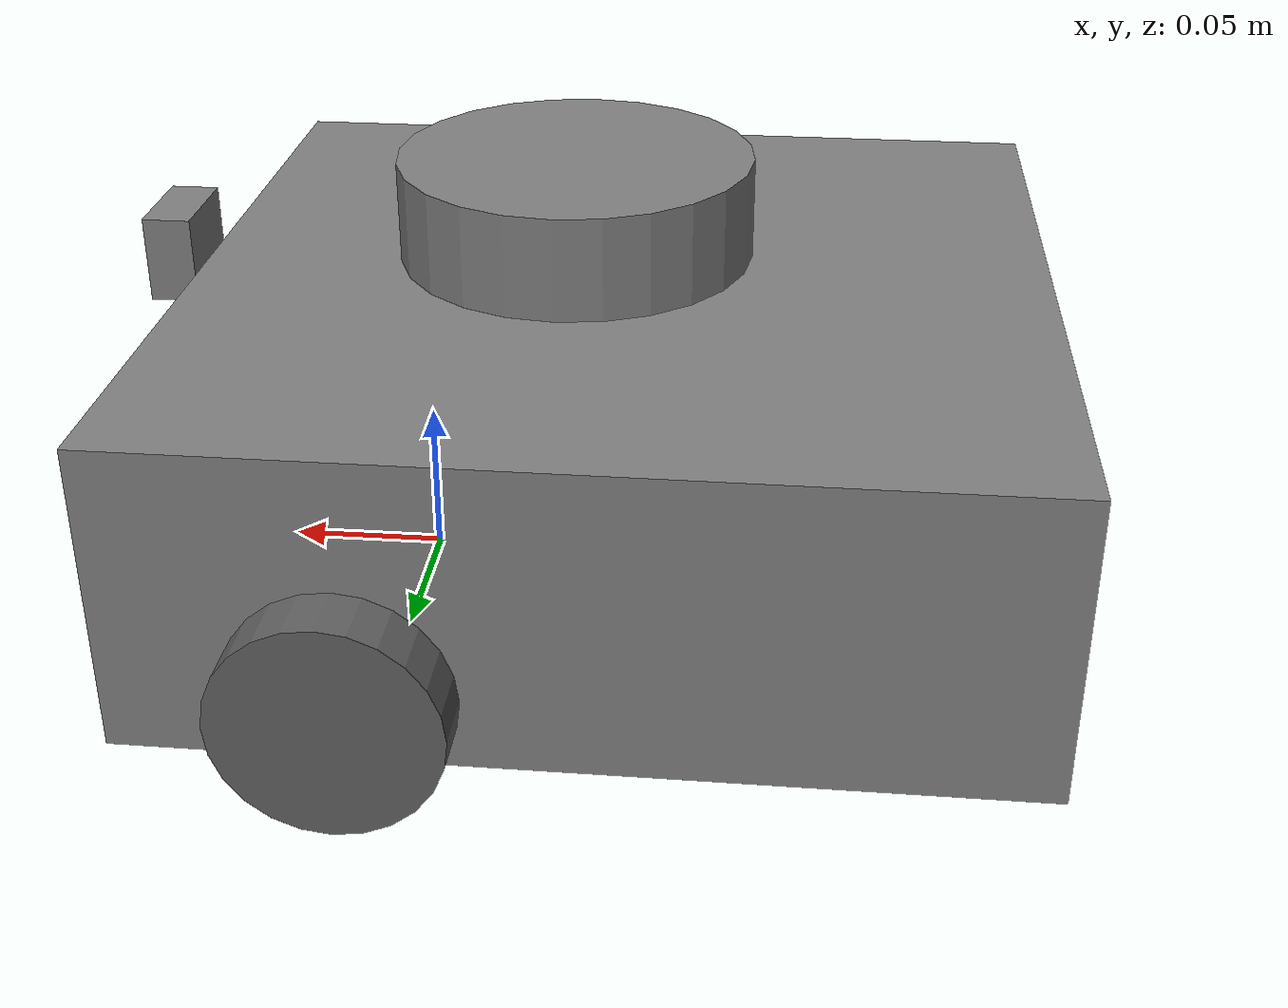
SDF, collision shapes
<sdf version='1.11'>
  <model name='turtlebot3_waffle_pi'>
    <link name='tb3_1/base_footprint'>
      <inertial>
        <pose>-0.0060564779596576851 0 0.019264420510096272 0 0 0</pose>
        <mass>1.4969096</mass>
        <inertia>
          <ixx>0.01330968881636598</ixx>
          <ixy>-4.7576583000000001e-05</ixy>
          <ixz>0.00091064575365546732</ixz>
          <iyy>0.013913324787183729</iyy>
          <iyz>-3.5422299000000002e-06</iyz>
          <izz>0.018379012970817749</izz>
        </inertia>
      </inertial>
      <collision name='tb3_1/base_footprint_fixed_joint_lump__tb3_1/base_link_collision'>
        <pose>-0.064000000000000001 0 0.057000000000000002 0 0 0</pose>
        <geometry>
          <box>
            <size>0.26600000000000001 0.26600000000000001 0.094</size>
          </box>
        </geometry>
        <surface>
          <contact>
            <ode>
              <kp>1000000</kp>
              <kd>100</kd>
              <max_vel>1</max_vel>
              <min_depth>0.001</min_depth>
            </ode>
          </contact>
          <friction>
            <ode>
              <mu>0</mu>
              <mu2>0</mu2>
            </ode>
          </friction>
        </surface>
      </collision>
      <collision name='tb3_1/base_footprint_fixed_joint_lump__tb3_1/camera_link_collision_1'>
        <pose>0.078 0 0.107 0 0 0</pose>
        <geometry>
          <box>
            <size>0.014999999999999999 0.029999999999999999 0.027</size>
          </box>
        </geometry>
      </collision>
      <collision name='tb3_1/base_footprint_fixed_joint_lump__tb3_1/caster_back_left_link_collision_2'>
        <pose>-0.17699999999999999 0.064000000000000001 0.033000000000000002 0 0 0</pose>
        <geometry>
          <sphere>
            <radius>0.033000000000000002</radius>
          </sphere>
        </geometry>
        <surface>
          <contact>
            <ode>
              <kp>1000000</kp>
              <kd>100</kd>
              <max_vel>1</max_vel>
              <min_depth>0.001</min_depth>
            </ode>
          </contact>
          <friction>
            <ode>
              <mu>0.001</mu>
              <mu2>0.001</mu2>
            </ode>
          </friction>
        </surface>
      </collision>
      <collision name='tb3_1/base_footprint_fixed_joint_lump__tb3_1/caster_back_right_link_collision_3'>
        <pose>-0.17699999999999999 -0.064000000000000001 0.033000000000000002 0 0 0</pose>
        <geometry>
          <sphere>
            <radius>0.033000000000000002</radius>
          </sphere>
        </geometry>
        <surface>
          <contact>
            <ode>
              <kp>1000000</kp>
              <kd>100</kd>
              <max_vel>1</max_vel>
              <min_depth>0.001</min_depth>
            </ode>
          </contact>
          <friction>
            <ode>
              <mu>0.001</mu>
              <mu2>0.001</mu2>
            </ode>
          </friction>
        </surface>
      </collision>
      <collision name='tb3_1/base_footprint_fixed_joint_lump__tb3_1/base_scan_collision_4'>
        <pose>-0.049000000000000002 0 0.1255 0 0 0</pose>
        <geometry>
          <cylinder>
            <length>0.0315</length>
            <radius>0.055</radius>
          </cylinder>
        </geometry>
      </collision>
      <visual name='tb3_1/base_footprint_fixed_joint_lump__tb3_1/base_link_visual'>
        <pose>-0.064000000000000001 0 0.01 0 0 0</pose>
        <geometry>
          <mesh>
            <scale>0.001 0.001 0.001</scale>
            <uri>model://swarm_simulation/meshes/bases/waffle_pi_base.stl</uri>
          </mesh>
        </geometry>
        <material>
          <diffuse>0.5 0.5 0.5 1</diffuse>
          <ambient>0.5 0.5 0.5 1</ambient>
        </material>
      </visual>
      <visual name='tb3_1/base_footprint_fixed_joint_lump__tb3_1/base_scan_visual_1'>
        <pose>-0.064000000000000001 0 0.13200000000000001 0 0 0</pose>
        <geometry>
          <mesh>
            <scale>0.001 0.001 0.001</scale>
            <uri>model://swarm_simulation/meshes/sensors/lds.stl</uri>
          </mesh>
        </geometry>
        <material>
          <diffuse>0.37500003 0.37500003 0.37500003 1</diffuse>
          <ambient>0.37500003 0.37500003 0.37500003 1</ambient>
        </material>
      </visual>
      <sensor name='tb3_1_lidar' type='gpu_lidar'>
        <topic>/tb3_1/scan</topic>
        <pose>-0.064000000000000001 0 0.13200000000000001 0 0 0</pose>
        <always_on>true</always_on>
        <visualize>false</visualize>
        <update_rate>10</update_rate>
        <ray>
          <scan>
            <horizontal>
              <samples>360</samples>
              <resolution>1</resolution>
              <min_angle>0</min_angle>
              <max_angle>6.2831900000000003</max_angle>
            </horizontal>
          </scan>
          <range>
            <min>0.12</min>
            <max>3.5</max>
            <resolution>0.014999999999999999</resolution>
          </range>
        </ray>
        <gz_frame_id>tb3_1/base_scan</gz_frame_id>
      </sensor>
      <sensor name='tb3_1_camera' type='camera'>
        <topic>/tb3_1/camera/image_raw</topic>
        <pose>0.072999999999999995 -0.010999999999999999 0.094 0 0 0</pose>
        <always_on>true</always_on>
        <visualize>true</visualize>
        <update_rate>30</update_rate>
        <camera name='intel_realsense_r200'>
          <horizontal_fov>1.0855950000000001</horizontal_fov>
          <image>
            <width>640</width>
            <height>480</height>
            <format>R8G8B8</format>
          </image>
          <clip>
            <near>0.029999999999999999</near>
            <far>100</far>
          </clip>
        </camera>
        <camera_info_topic>/tb3_1/camera/camera_info</camera_info_topic>
        <gz_frame_id>tb3_1/camera_link</gz_frame_id>
      </sensor>
    </link>
    <joint name='tb3_1/wheel_left_joint' type='revolute'>
      <pose relative_to='tb3_1/base_footprint'>0 0.14399999999999999 0.033000000000000002 -1.5700000000000001 0 0</pose>
      <parent>tb3_1/base_footprint</parent>
      <child>tb3_1/wheel_left_link</child>
      <axis>
        <xyz>0 0 1</xyz>
        <limit>
          <lower>-inf</lower>
          <upper>inf</upper>
        </limit>
        <dynamics>
          <damping>0</damping>
          <friction>0</friction>
          <spring_reference>0</spring_reference>
          <spring_stiffness>0</spring_stiffness>
        </dynamics>
      </axis>
    </joint>
    <link name='tb3_1/wheel_left_link'>
      <pose relative_to='tb3_1/wheel_left_joint'>0 0 0 0 0 0</pose>
      <inertial>
        <pose>0 0 0 0 0 0</pose>
        <mass>0.02849894</mass>
        <inertia>
          <ixx>1.117558e-05</ixx>
          <ixy>-4.2369783000000002e-11</ixy>
          <ixz>-5.9381719000000002e-09</ixz>
          <iyy>1.1192413e-05</iyy>
          <iyz>-1.4400107e-11</iyz>
          <izz>2.0712558000000001e-05</izz>
        </inertia>
      </inertial>
      <collision name='tb3_1/wheel_left_link_collision'>
        <pose>0 0 0 0 0 0</pose>
        <geometry>
          <cylinder>
            <length>0.017999999999999999</length>
            <radius>0.033000000000000002</radius>
          </cylinder>
        </geometry>
        <surface>
          <contact>
            <ode>
              <kp>1000000</kp>
              <kd>100</kd>
              <max_vel>0.10000000000000001</max_vel>
              <min_depth>0.001</min_depth>
            </ode>
          </contact>
          <friction>
            <ode>
              <mu>10</mu>
              <mu2>10</mu2>
            </ode>
          </friction>
        </surface>
      </collision>
      <visual name='tb3_1/wheel_left_link_visual'>
        <pose>0 0 0 1.5700000000000001 0 0</pose>
        <geometry>
          <mesh>
            <scale>0.001 0.001 0.001</scale>
            <uri>model://swarm_simulation/meshes/wheels/left_tire.stl</uri>
          </mesh>
        </geometry>
        <material>
          <diffuse>0.37500003 0.37500003 0.37500003 1</diffuse>
          <ambient>0.37500003 0.37500003 0.37500003 1</ambient>
        </material>
      </visual>
    </link>
    <joint name='tb3_1/wheel_right_joint' type='revolute'>
      <pose relative_to='tb3_1/base_footprint'>0 -0.14399999999999999 0.033000000000000002 -1.5700000000000001 0 0</pose>
      <parent>tb3_1/base_footprint</parent>
      <child>tb3_1/wheel_right_link</child>
      <axis>
        <xyz>0 0 1</xyz>
        <limit>
          <lower>-inf</lower>
          <upper>inf</upper>
        </limit>
        <dynamics>
          <damping>0</damping>
          <friction>0</friction>
          <spring_reference>0</spring_reference>
          <spring_stiffness>0</spring_stiffness>
        </dynamics>
      </axis>
    </joint>
    <link name='tb3_1/wheel_right_link'>
      <pose relative_to='tb3_1/wheel_right_joint'>0 0 0 0 0 0</pose>
      <inertial>
        <pose>0 0 0 0 0 0</pose>
        <mass>0.02849894</mass>
        <inertia>
          <ixx>1.117558e-05</ixx>
          <ixy>-4.2369783000000002e-11</ixy>
          <ixz>-5.9381719000000002e-09</ixz>
          <iyy>1.1192413e-05</iyy>
          <iyz>-1.4400107e-11</iyz>
          <izz>2.0712558000000001e-05</izz>
        </inertia>
      </inertial>
      <collision name='tb3_1/wheel_right_link_collision'>
        <pose>0 0 0 0 0 0</pose>
        <geometry>
          <cylinder>
            <length>0.017999999999999999</length>
            <radius>0.033000000000000002</radius>
          </cylinder>
        </geometry>
        <surface>
          <contact>
            <ode>
              <kp>1000000</kp>
              <kd>100</kd>
              <max_vel>0.10000000000000001</max_vel>
              <min_depth>0.001</min_depth>
            </ode>
          </contact>
          <friction>
            <ode>
              <mu>10</mu>
              <mu2>10</mu2>
            </ode>
          </friction>
        </surface>
      </collision>
      <visual name='tb3_1/wheel_right_link_visual'>
        <pose>0 0 0 1.5700000000000001 0 0</pose>
        <geometry>
          <mesh>
            <scale>0.001 0.001 0.001</scale>
            <uri>model://swarm_simulation/meshes/wheels/right_tire.stl</uri>
          </mesh>
        </geometry>
        <material>
          <diffuse>0.37500003 0.37500003 0.37500003 1</diffuse>
          <ambient>0.37500003 0.37500003 0.37500003 1</ambient>
        </material>
      </visual>
    </link>
    <plugin name='gz::sim::systems::DiffDrive' filename='gz-sim-diff-drive-system'>
      <ros>
        <namespace>/tb3_1</namespace>
      </ros>
      <left_joint>tb3_1/wheel_left_joint</left_joint>
      <right_joint>tb3_1/wheel_right_joint</right_joint>
      <wheel_separation>0.287</wheel_separation>
      <wheel_diameter>0.066</wheel_diameter>
      <max_linear_acceleration>5.0</max_linear_acceleration>
      <min_linear_acceleration>-5.0</min_linear_acceleration>
      <max_angular_acceleration>10.0</max_angular_acceleration>
      <min_angular_acceleration>-10.0</min_angular_acceleration>
      <topic>/tb3_1/cmd_vel</topic>
      <odom_topic>/tb3_1/odom</odom_topic>
      <tf_topic>/tb3_1/tf</tf_topic>
      <frame_id>tb3_1/odom</frame_id>
      <child_frame_id>tb3_1/base_footprint</child_frame_id>
      <odom_publish_frequency>30</odom_publish_frequency>
    </plugin>
    <frame name='tb3_1/camera_rgb_optical_joint' attached_to='tb3_1/camera_rgb_frame'>
      <pose>0 0 0 -1.5700000000000001 -5.5511151231257827e-17 -1.5700000000000001</pose>
    </frame>
    <frame name='tb3_1/camera_rgb_optical_frame' attached_to='tb3_1/camera_rgb_optical_joint'>
      <pose>0 0 0 0 0 0</pose>
    </frame>
    <frame name='tb3_1/camera_rgb_joint' attached_to='tb3_1/camera_link'>
      <pose>0.0030000000000000001 0.010999999999999999 0.0089999999999999993 0 0 0</pose>
    </frame>
    <frame name='tb3_1/camera_rgb_frame' attached_to='tb3_1/camera_rgb_joint'>
      <pose>0 0 0 0 0 0</pose>
    </frame>
    <frame name='tb3_1/camera_joint' attached_to='tb3_1/base_link'>
      <pose>0.072999999999999995 -0.010999999999999999 0.084000000000000005 0 0 0</pose>
    </frame>
    <frame name='tb3_1/camera_link' attached_to='tb3_1/camera_joint'>
      <pose>0 0 0 0 0 0</pose>
    </frame>
    <frame name='tb3_1/caster_back_left_joint' attached_to='tb3_1/base_link'>
      <pose>-0.17699999999999999 0.064000000000000001 -0.0040000000000000001 0 0 0</pose>
    </frame>
    <frame name='tb3_1/caster_back_left_link' attached_to='tb3_1/caster_back_left_joint'>
      <pose>0 0 0 0 0 0</pose>
    </frame>
    <frame name='tb3_1/caster_back_right_joint' attached_to='tb3_1/base_link'>
      <pose>-0.17699999999999999 -0.064000000000000001 -0.0040000000000000001 0 0 0</pose>
    </frame>
    <frame name='tb3_1/caster_back_right_link' attached_to='tb3_1/caster_back_right_joint'>
      <pose>0 0 0 0 0 0</pose>
    </frame>
    <frame name='tb3_1/imu_joint' attached_to='tb3_1/base_link'>
      <pose>0 0 0.068000000000000005 0 0 0</pose>
    </frame>
    <frame name='tb3_1/imu_link' attached_to='tb3_1/imu_joint'>
      <pose>0 0 0 0 0 0</pose>
    </frame>
    <frame name='tb3_1/scan_joint' attached_to='tb3_1/base_link'>
      <pose>-0.064000000000000001 0 0.122 0 0 0</pose>
    </frame>
    <frame name='tb3_1/base_scan' attached_to='tb3_1/scan_joint'>
      <pose>0 0 0 0 0 0</pose>
    </frame>
    <frame name='tb3_1/base_joint' attached_to='tb3_1/base_footprint'>
      <pose>0 0 0.01 0 0 0</pose>
    </frame>
    <frame name='tb3_1/base_link' attached_to='tb3_1/base_joint'>
      <pose>0 0 0 0 0 0</pose>
    </frame>
  </model>
</sdf>
